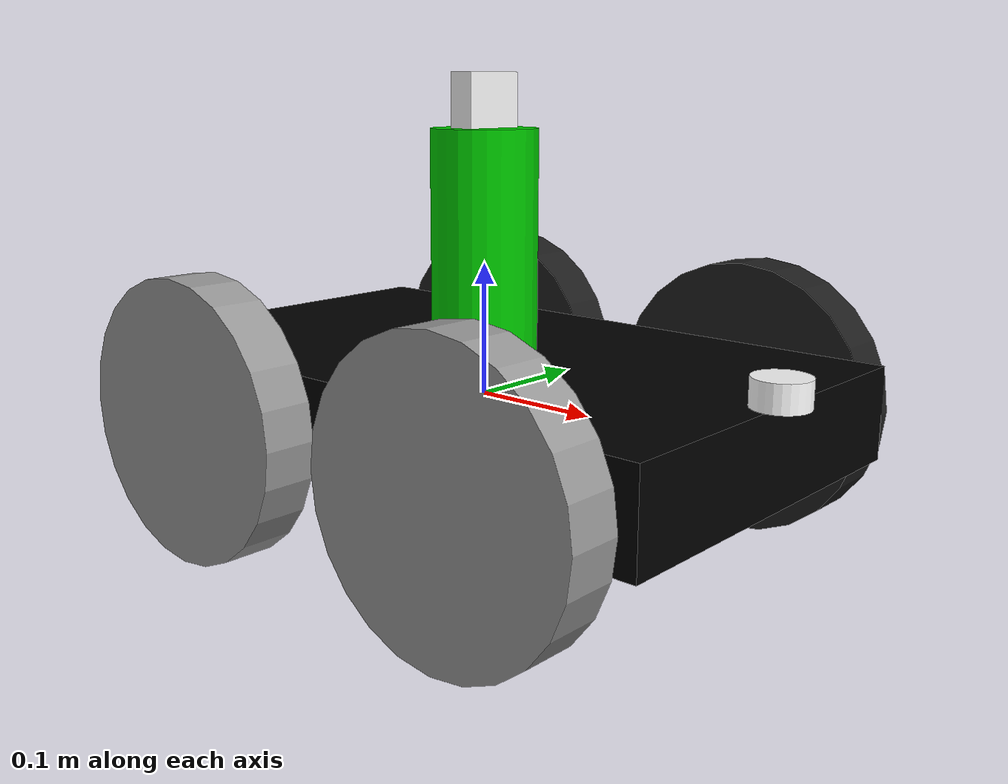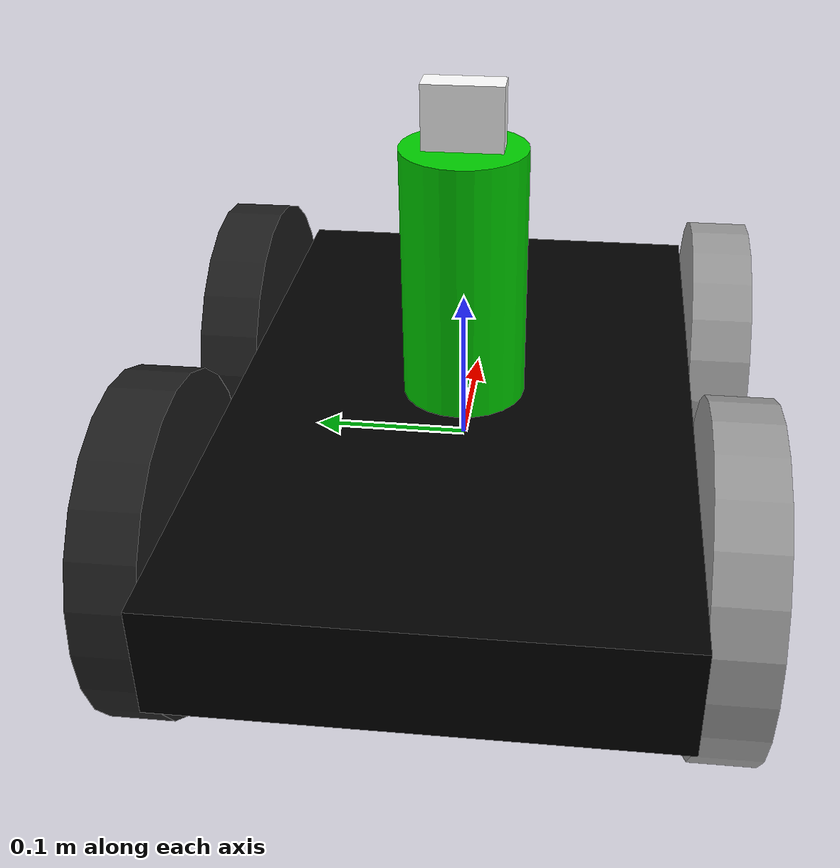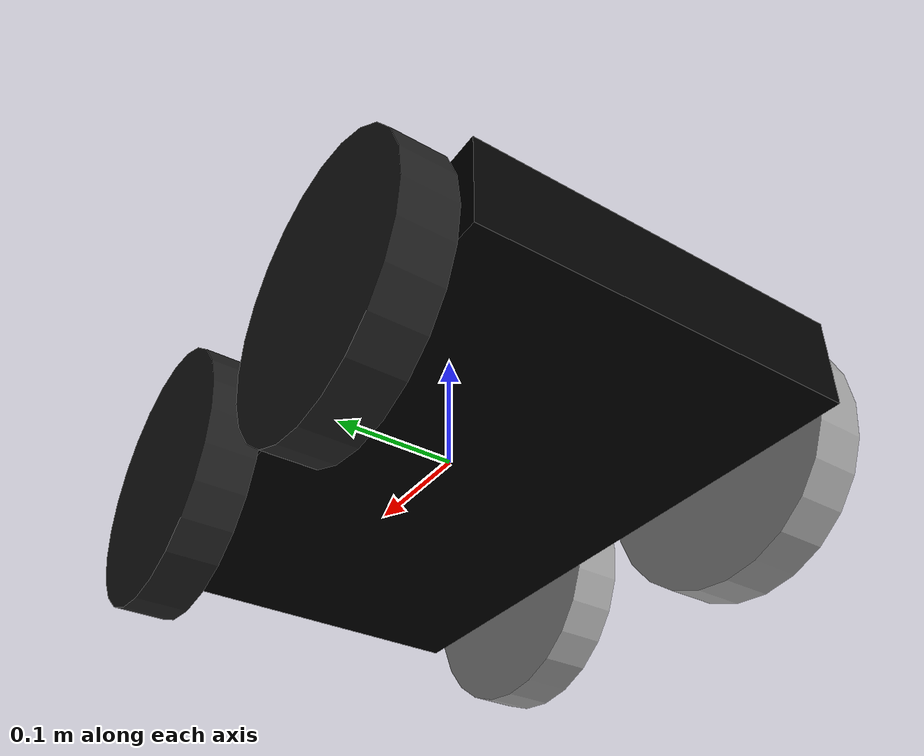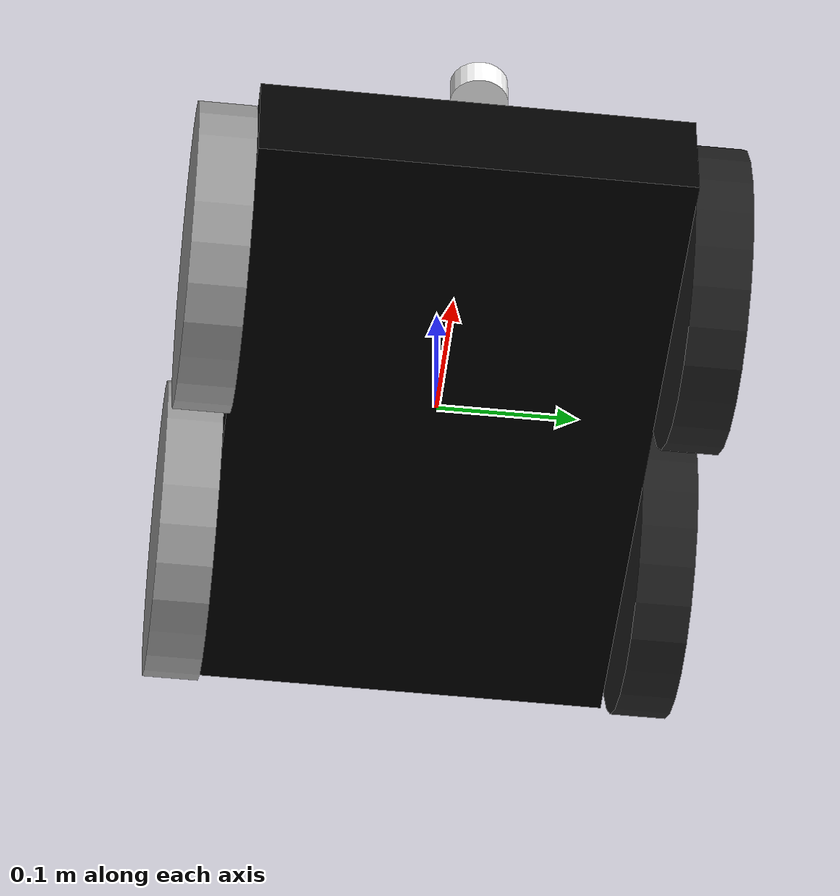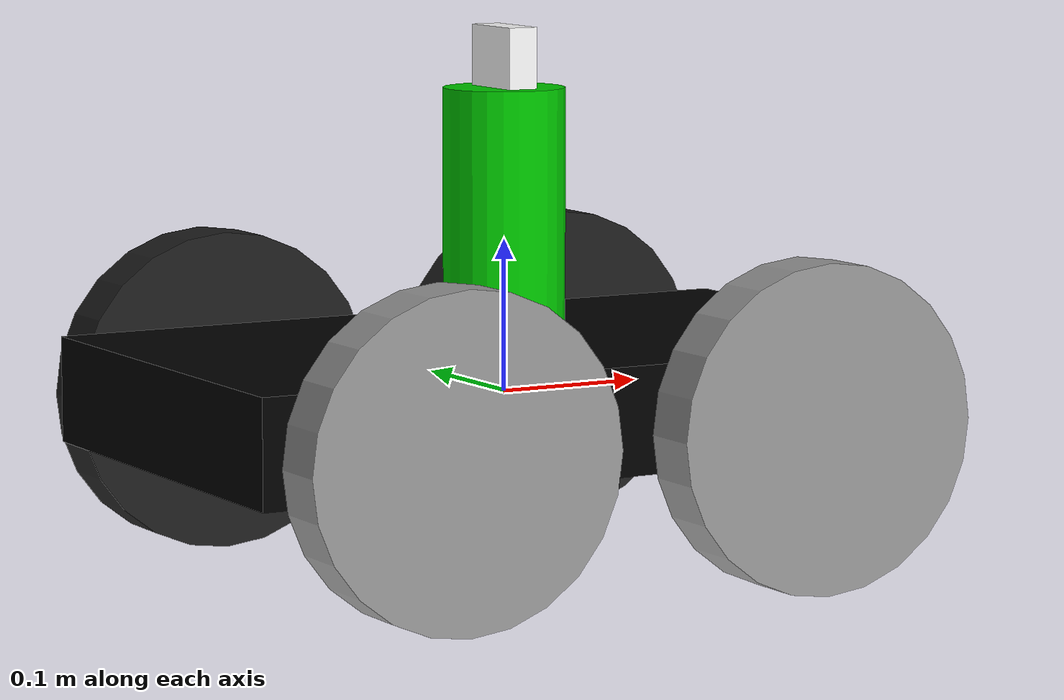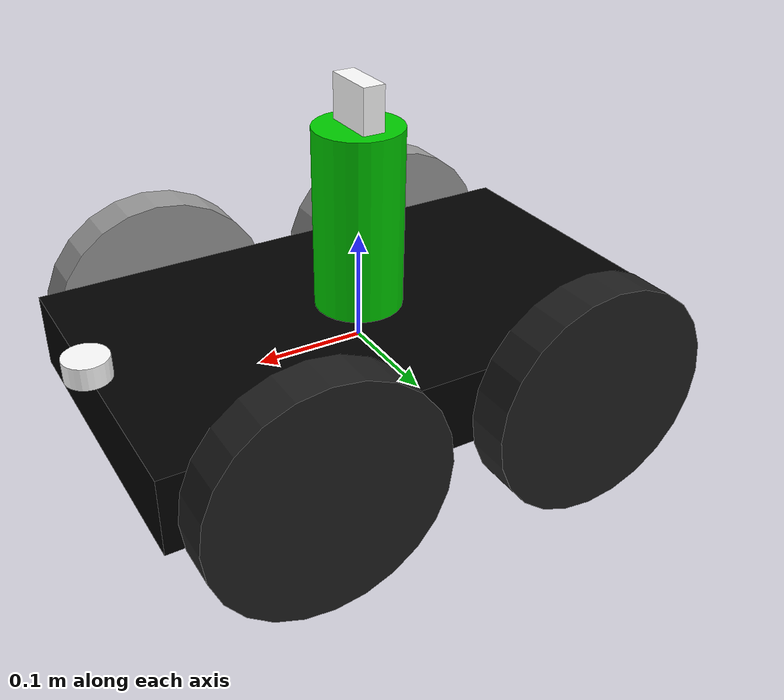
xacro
<?xml version="1.0"?>

<robot name="roblucci" xmlns:xacro="https://www.ros.org/wiki/xacro" >

 <xacro:include filename="$(find assignment2)/urdf/materials.xacro" />
 <xacro:include filename="$(find assignment2)/urdf/robot.gazebo" />

 <xacro:macro name="cylinder_inertia" params="mass r l">
    <inertia ixx="${mass*(3*r*r+l*l)/12}" ixy = "0" ixz = "0"
                iyy="${mass*(3*r*r+l*l)/12}" iyz = "0" izz="${mass*(r*r)/2}" />

 </xacro:macro>

    	<xacro:property name="length_wheel" value="0.04" />
	<xacro:property name="radius_wheel" value="0.1" />

	<xacro:macro name="default_inertial" params="mass">
               <inertial>
                       <mass value="${mass}" />
                       <origin rpy="0 1.5707 1.5707" xyz="0 0 0"/>
                       <inertia ixx="0.000526666666667" ixy="0" ixz="0" iyy="0.000526666666667" iyz="0" izz="0.001"/>
               </inertial>
	</xacro:macro>

    <xacro:macro name="wheel_geometry">
		<geometry>
       			<cylinder length="0.04" radius="0.1"/>
     		</geometry>
	</xacro:macro>

  <link name="link_chassis">
    <!-- pose and inertial -->
    <pose>0 0 0.1 0 0 0</pose>
    <inertial>
      <mass value="5"/>
      <origin rpy="0 0 0" xyz="0 0 0.1"/>
      <inertia ixx="0.0395416666667" ixy="0" ixz="0" iyy="0.106208333333" iyz="0" izz="0.106208333333"/>
    </inertial>
    <!-- body -->
    <collision name="collision_chassis">
      <geometry>
        <box size="0.5 0.3 0.07"/>
      </geometry>
    </collision>
    <visual>
      <origin rpy="0 0 0" xyz="0 0 0"/>
      <geometry>
        <box size="0.5 0.3 0.07"/>
      </geometry>
      <material name="black"/>
    </visual>
  </link>

  <link name="link_right_wheel">
    <xacro:default_inertial mass="0.2" />
    <collision name="link_right_wheel_collision">
      <origin rpy="0 1.5707 1.5707" xyz="0 0 0"/>
      <geometry>
       <cylinder length="0.04" radius="0.107"/>
      </geometry>
      <surface>
      <friction>
        <ode>
          <mu1>1.0</mu1> <!-- This will set both mu1 and mu2 to the same value -->
          <mu2>1.0</mu2> <!-- This is redundant since mu is set, but for clarity -->
          <kp>1000000.0</kp> <!-- A high value for a stiff contact -->
          <kd>1.0</kd>
        </ode>
      </friction>
    </surface>
    </collision>
    <visual name="link_right_wheel_visual">
      <origin rpy="0 1.5707 1.5707" xyz="0 0 0"/>
      <geometry>
        <cylinder length="0.04" radius="0.107"/>
        <material name="black"/>
      </geometry>
    </visual>
  </link>

  <link name="link_left_wheel">
    <xacro:default_inertial mass="0.2" />
    <collision name="link_left_wheel_collision">
      <origin rpy="0 1.5707 1.5707" xyz="0 0 0"/>
      <geometry>
       <cylinder length="0.04" radius="0.107"/>
     </geometry>
     <surface>
      <friction>
        <ode>
          <mu1>1.0</mu1> <!-- This will set both mu1 and mu2 to the same value -->
          <mu2>1.0</mu2> <!-- This is redundant since mu is set, but for clarity -->
          <kp>1000000.0</kp> <!-- A high value for a stiff contact -->
          <kd>1.0</kd>
        </ode>
      </friction>
    </surface>
    </collision>
    <visual name="link_left_wheel_visual">
      <origin rpy="0 1.5707 1.5707" xyz="0 0 0"/>
      <geometry>
        <cylinder length="0.04" radius="0.107"/>
        <material name="grey"/>
      </geometry>
      </visual>
  </link>

  <joint name="joint_right_wheel" type="continuous">
    <origin rpy="0 0 0" xyz="0.13 0.17 -0.01"/>
    <child link="link_right_wheel"/>
    <parent link="link_chassis"/>
    <axis rpy="0 0 0" xyz="0 1 0"/>
    <limit effort="10000" velocity="1000"/>
    <joint_properties damping="1.0" friction="1.0"/>
  </joint>

  <joint name="joint_left_wheel" type="continuous">
    <origin rpy="0 0 0" xyz="0.13 -0.17 -0.01"/>
    <child link="link_left_wheel"/>
    <parent link="link_chassis"/>
    <axis rpy="0 0 0" xyz="0 1 0"/>
    <limit effort="10000" velocity="1000"/>
    <joint_properties damping="1.0" friction="1.0"/>
  </joint>

  <link name="link_right_wheel_back">
    <xacro:default_inertial mass="0.2" />
    <collision name="link_right_wheel_back_collision">
      <origin rpy="0 1.5707 1.5707" xyz="0 0 0"/>
      <geometry>
       <cylinder length="0.04" radius="0.107"/>
      </geometry>
      <surface>
      <friction>
        <ode>
          <mu1>1.0</mu1> <!-- This will set both mu1 and mu2 to the same value -->
          <mu2>1.0</mu2> <!-- This is redundant since mu is set, but for clarity -->
          <kp>1000000.0</kp> <!-- A high value for a stiff contact -->
          <kd>1.0</kd>
        </ode>
      </friction>
    </surface>
    </collision>
    <visual name="link_right_wheel_back_visual">
      <origin rpy="0 1.5707 1.5707" xyz="0 0 0"/>
      <geometry>
        <cylinder length="0.04" radius="0.107"/>
        <material name="black"/>
      </geometry>
    </visual>
  </link>

  <link name="link_left_wheel_back">
    <xacro:default_inertial mass="0.2" />
    <collision name="link_left_wheel_back_collision">
      <origin rpy="0 1.5707 1.5707" xyz="0 0 0"/>
      <geometry>
       <cylinder length="0.04" radius="0.107"/>
      </geometry>
      <surface>
      <friction>
        <ode>
          <mu1>1.0</mu1> <!-- This will set both mu1 and mu2 to the same value -->
          <mu2>1.0</mu2> <!-- This is redundant since mu is set, but for clarity -->
          <kp>1000000.0</kp> <!-- A high value for a stiff contact -->
          <kd>1.0</kd>
        </ode>
      </friction>
    </surface>
    </collision>
    <visual name="link_left_wheel_back_visual">
      <origin rpy="0 1.5707 1.5707" xyz="0 0 0"/>
      <geometry>
        <cylinder length="0.04" radius="0.107"/>
        <material name="grey"/>
      </geometry>
    </visual>
  </link>

  <joint name="joint_right_wheel_back" type="continuous">
    <origin rpy="0 0 0" xyz="-0.13 0.17 -0.01"/>
    <child link="link_right_wheel_back"/>
    <parent link="link_chassis"/>
    <axis rpy="0 0 0" xyz="0 1 0"/>
    <limit effort="10000" velocity="1000"/>
    <joint_properties damping="1.0" friction="1.0"/>
  </joint>

  <joint name="joint_left_wheel_back" type="continuous">
    <origin rpy="0 0 0" xyz="-0.13 -0.17 -0.01"/>
    <child link="link_left_wheel_back"/>
    <parent link="link_chassis"/>
    <axis rpy="0 0 0" xyz="0 1 0"/>
    <limit effort="10000" velocity="1000"/>
    <joint_properties damping="1.0" friction="1.0"/>
  </joint>

  <link name="laser">
    <xacro:cylinder_inertia mass="0.2" r="0.02" l="0.01" />

    <collision>
      <origin xyz="0 0 0" rpy="0 0 0"/>
      <geometry>
        <cylinder radius="0.02" length="0.02"/>
      </geometry>
    </collision>

    <visual>
      <origin xyz="0 0 0" rpy="0 0 0" />
      <geometry>
        <cylinder radius="0.02" length="0.02"/>
      </geometry>
      <material name="white" />
    </visual>

  </link>

  <joint name="joint_laser" type="fixed">
    <origin xyz="0.25 0 0.045" rpy="0 0 0"/>
    <parent link="link_chassis"/>
    <child link="laser"/>
  </joint>

<!--arm definition -->

  <link name="arm_link_01">
    <inertial>
      <mass value="0.3"/>
      <origin xyz="0 0 0" rpy="0 0 0" />
      <inertia ixx="0.0" ixy="0" ixz="0" iyy="0.0" iyz="0" izz="0.0"/>
    </inertial>
    <collision>
      <origin xyz="0 0 0" rpy="0 0 0"/>
      <geometry>
        <cylinder radius="0.04" length="0.4"/>
      </geometry>
    </collision>
    <visual>
      <origin xyz="0 0 0.01" rpy="0 0 0"/>
      <geometry>
        <cylinder radius="0.04" length="0.2"/>
      </geometry>
      <material name="green" />
    </visual>
  </link>

  <joint name="arm_joint_01" type="revolute">
    <axis xyz="0 0 1"/>
    <limit effort="1000.0" lower="-3.14" upper="3.14" velocity="0.2"/>
    <origin rpy="0 0 0" xyz="0 0 0.09"/>
    <dynamics damping="2" />
    <parent link="link_chassis"/>
    <child link="arm_link_01"/>
  </joint>

  <!-- Camera -->
  <link name="camera_link">
    <inertial>
      <mass value="0.4"/>
      <origin rpy="0 0 0" xyz="0 0 0"/>
      <inertia ixx="0.0395416666667" ixy="0" ixz="0" iyy="0.106208333333" iyz="0" izz="0.106208333333"/>
    </inertial>

    <collision>
      <origin xyz="0 0 0.025" rpy="0 0 0"/>
      <geometry>
        <box size="0.02 0.05 0.05"/>
      </geometry>
    </collision>

    <visual>
      <origin xyz="0 0 0.025" rpy="0 0 0"/>
      <geometry>
    <box size="0.02 0.05 0.05"/>
      </geometry>
      <material name="white"/>
    </visual>

  </link>

  <joint name="camera_joint" type="fixed">
    <axis xyz="0 0 0" />
    <origin xyz="0 0 0.1" rpy="0 0 0"/>
    <parent link="arm_link_01"/>
    <child link="camera_link"/>
  </joint>

<transmission name="arm_joint_01_trans">
  <type>transmission_interface/SimpleTransmission</type>
  <joint name="arm_joint_01">
    <hardwareInterface>hardware_interface/EffortJointInterface</hardwareInterface>
  </joint>
  <actuator name="motor1">
    <hardwareInterface>hardware_interface/EffortJointInterface</hardwareInterface>
    <mechanicalInterface>1</mechanicalInterface>
  </actuator>
</transmission>

</robot>

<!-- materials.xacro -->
<robot name="roblucci" xmlns:xacro="https://www.ros.org/wiki/xacro" >

  <material name="black">
    <color rgba="0.0 0.0 0.0 1.0"/>
  </material>
  <material name="blue">
    <color rgba="0.203125 0.23828125 0.28515625 1.0"/>
  </material>
  <material name="green">
    <color rgba="0.0 0.8 0.0 1.0"/>
  </material>
  <material name="grey">
    <color rgba="0.2 0.2 0.2 1.0"/>
  </material>
  <material name="orange">
    <color rgba="1.0 0.423529411765 0.0392156862745 1.0"/>
  </material>
  <material name="brown">
    <color rgba="0.870588235294 0.811764705882 0.764705882353 1.0"/>
  </material>
  <material name="red">
    <color rgba="0.80078125 0.12890625 0.1328125 1.0"/>
  </material>
  <material name="white">
    <color rgba="1.0 1.0 1.0 1.0"/>
  </material>

</robot>
